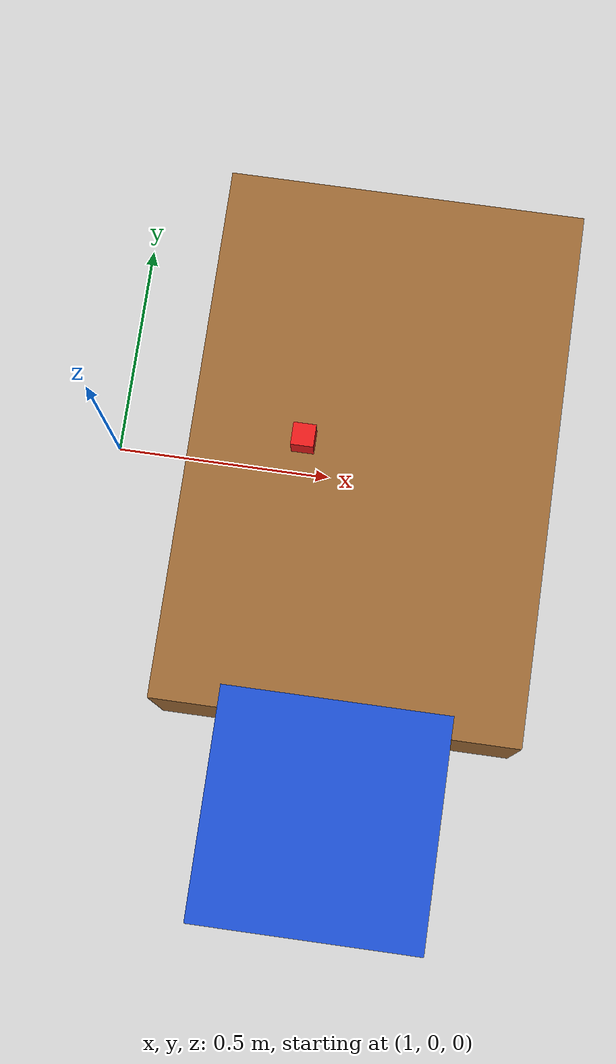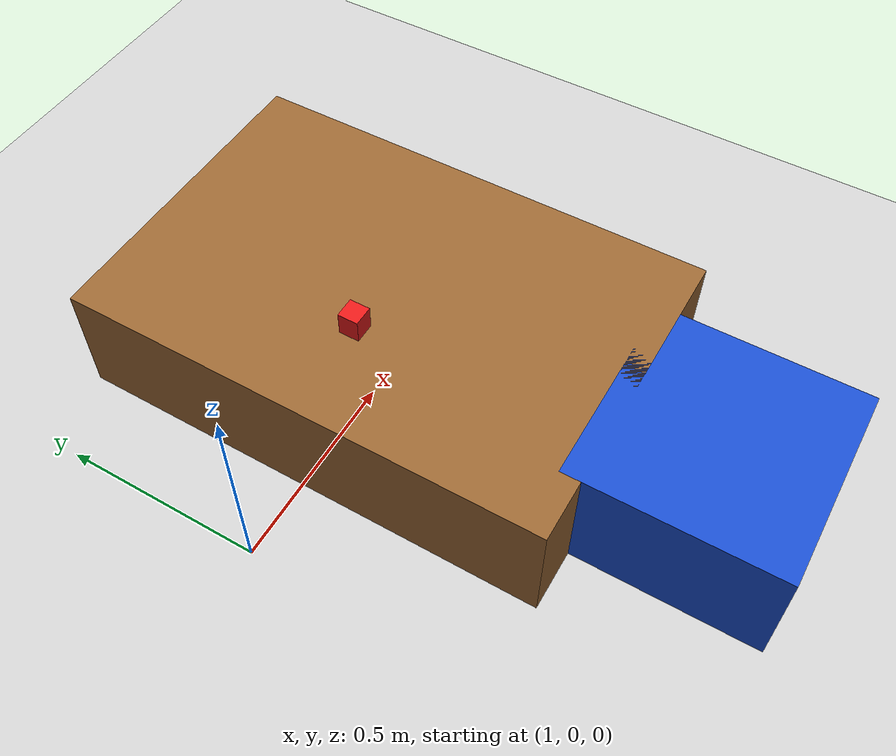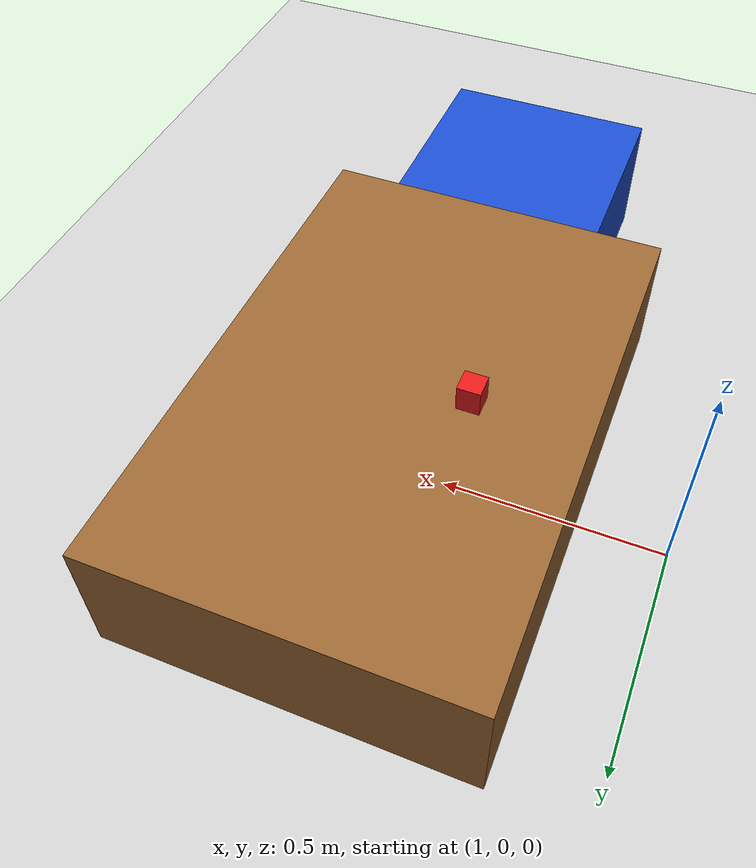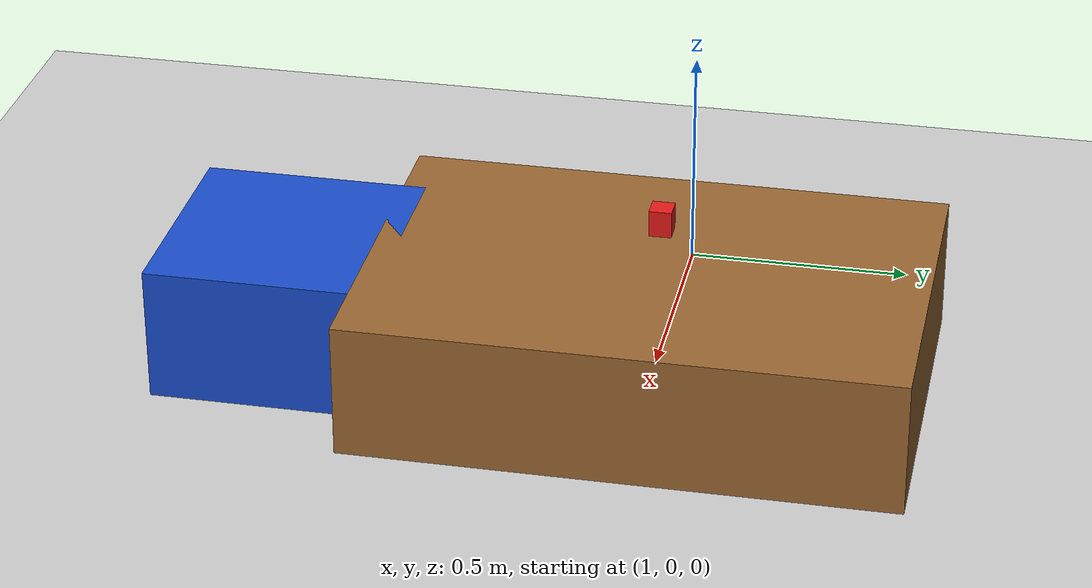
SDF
<?xml version="1.0" ?>
<sdf version="1.8">
  <world name="workstation_manipulation">
    <physics name="1ms" type="ignored"><max_step_size>0.001</max_step_size><real_time_factor>1.0</real_time_factor></physics>
    <plugin filename="libignition-gazebo-physics-system.so" name="ignition::gazebo::systems::Physics"/>
    <plugin filename="libignition-gazebo-scene-broadcaster-system.so" name="ignition::gazebo::systems::SceneBroadcaster"/>
    <plugin filename="libignition-gazebo-user-commands-system.so" name="ignition::gazebo::systems::UserCommands"/>
    <plugin filename="libignition-gazebo-sensors-system.so" name="ignition::gazebo::systems::Sensors"><render_engine>ogre</render_engine></plugin>
    <plugin filename="libignition-gazebo-imu-system.so" name="ignition::gazebo::systems::Imu"/>

    <light type="directional" name="sun"><cast_shadows>true</cast_shadows><pose>0 0 10 0 0 0</pose><diffuse>0.8 0.8 0.8 1</diffuse><specular>0.2 0.2 0.2 1</specular><direction>-0.5 0.1 -0.9</direction></light>
    <model name="ground_plane"><static>true</static><link name="link"><collision name="c"><geometry><plane><normal>0 0 1</normal><size>30 30</size></plane></geometry></collision><visual name="v"><geometry><plane><normal>0 0 1</normal><size>30 30</size></plane></geometry><material><ambient>0.8 0.8 0.8 1</ambient><diffuse>0.8 0.8 0.8 1</diffuse></material></visual></link></model>

    <!-- Inspection Workstation Table (at x=1.6, y=0.0) -->
    <model name="workstation_table">
      <static>true</static>
      <pose>1.6 0.0 0.15 0 0 0</pose>
      <link name="table_top">
        <collision name="c"><geometry><box><size>0.8 1.2 0.3</size></box></geometry></collision>
        <visual name="v"><geometry><box><size>0.8 1.2 0.3</size></box></geometry><material><ambient>0.4 0.3 0.2 1</ambient><diffuse>0.6 0.4 0.2 1</diffuse></material></visual>
      </link>
    </model>

    <!-- Manipulation Pick Target: Small industrial cube on the table -->
    <model name="target_cube_red">
      <pose>1.45 0.0 0.33 0 0 0</pose>
      <link name="cube_link">
        <inertial><mass>0.15</mass><inertia ixx="0.0001" ixy="0" ixz="0" iyy="0.0001" iyz="0" izz="0.0001"/></inertial>
        <collision name="c"><geometry><box><size>0.05 0.05 0.06</size></box></geometry></collision>
        <visual name="v"><geometry><box><size>0.05 0.05 0.06</size></box></geometry><material><ambient>0.9 0.1 0.1 1</ambient><diffuse>0.9 0.1 0.1 1</diffuse></material></visual>
      </link>
    </model>

    <!-- Drop Bin for Placed Objects (at x=1.6, y=-0.8) -->
    <model name="drop_bin">
      <static>true</static>
      <pose>1.6 -0.8 0.15 0 0 0</pose>
      <link name="bin_link">
        <collision name="c"><geometry><box><size>0.5 0.5 0.3</size></box></geometry></collision>
        <visual name="v"><geometry><box><size>0.5 0.5 0.3</size></box></geometry><material><ambient>0.1 0.3 0.8 1</ambient><diffuse>0.1 0.3 0.8 1</diffuse></material></visual>
      </link>
    </model>
  </world>
</sdf>
